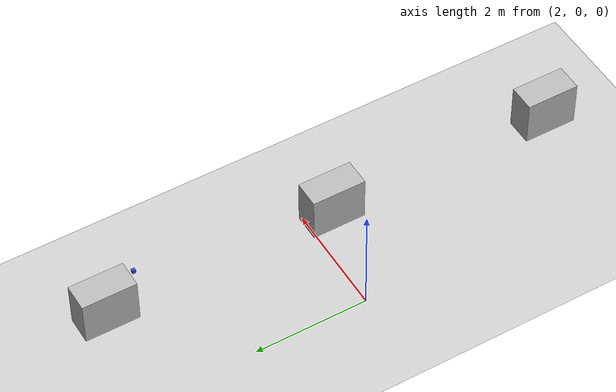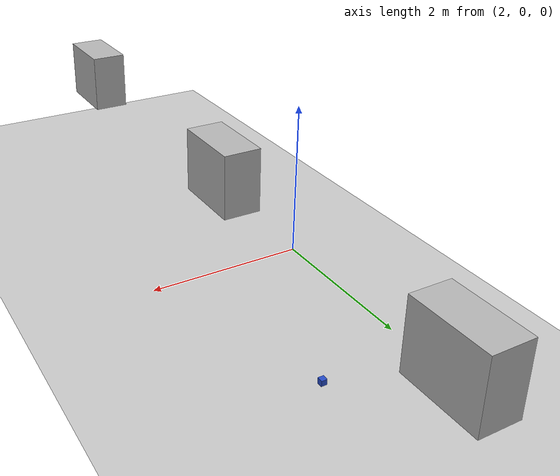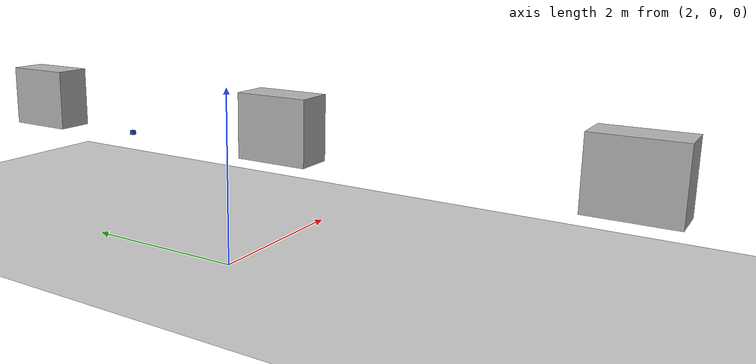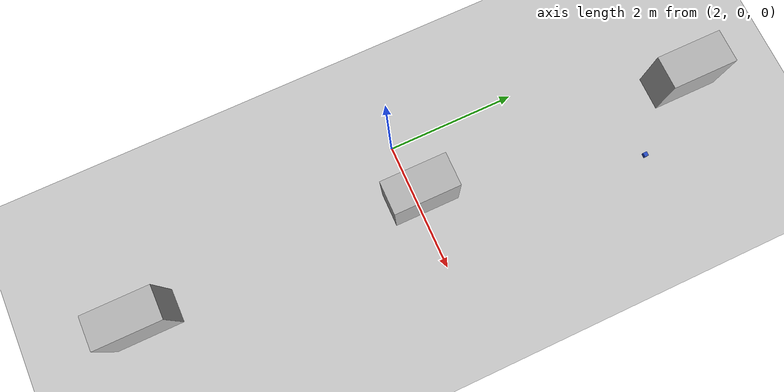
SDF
<sdf version="1.4">
 <world name="default">
  <include><uri>model://ground_plane</uri></include>
  <include><uri>model://sun</uri></include>
  <include><uri>model://fetchit_table</uri><name>pretzels</name><pose>3.05 -4 1 0 0 1.57</pose></include>
  <include><uri>model://fetchit_table</uri><name>gold_fish</name><pose>3.05 0 1 0 0 1.57</pose></include>
  <include><uri>model://fetchit_table</uri><name>cheese_its</name><pose>3.05 4 1 0 0 1.57</pose></include>
  <include><uri>model://demo_cube</uri><pose>3.8 3.15 0.83 0 0 0</pose></include>
 </world>
</sdf>

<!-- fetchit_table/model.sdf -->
<sdf version='1.4'>
  <model name="fetchit_table">
      <static>1</static>
      <link name='link'>
        <inertial>
          <mass>0.0592855</mass>
          <inertia>
            <ixx>2.31818050784e-05</ixx>
            <ixy>0.000000</ixy>
            <ixz>0.000000</ixz>
            <iyy>2.31851837098e-05</iyy>
            <iyz>0.000000</iyz>
            <izz>8.88944636856e-06</izz>
          </inertia>
        </inertial>
        <collision name='collision'>
          <geometry>
            <mesh>
              <uri>model://fetchit_table/meshes/simple.dae</uri>
              <scale>1 1 1</scale>
            </mesh>
          </geometry>
          <surface>
            <friction>
              <ode>
                <mu>30.0</mu>
                <mu2>30.0</mu2>
              </ode>
            </friction>
          </surface>
        </collision>
        <visual name='visual'>
          <geometry>
            <mesh>
              <uri>model://fetchit_table/meshes/tablefetchit_v2_materials.dae</uri>
              <scale>1 1 1</scale>
            </mesh>
          </geometry>
        </visual>
        <velocity_decay>
          <linear>0.000000</linear>
          <angular>0.000000</angular>
        </velocity_decay>
        <self_collide>0</self_collide>
        <kinematic>0</kinematic>
        <gravity>1</gravity>
      </link>
  </model>
</sdf>

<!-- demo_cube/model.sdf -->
<sdf version='1.6'>
  <model name="demo_cube">
      <static>0</static>
      <link name='link'>
        <inertial>
          <mass>0.25</mass>
          <inertia>
            <ixx>0.001</ixx>
            <ixy>0.000000</ixy>
            <ixz>0.000000</ixz>
            <iyy>0.001</iyy>
            <iyz>0.000000</iyz>
            <izz>0.001</izz>
          </inertia>
        </inertial>
        <collision name='collision'>
          <geometry>
            <box>
              <size>0.060 0.060 0.060</size>
            </box>
          </geometry>
          <surface>
            <friction>
              <ode>
                <mu>30.0</mu>
                <mu2>30.0</mu2>
              </ode>
            </friction>
            <contact>
              <ode>
                <kp>1000000.0</kp>
                <kd>100.0</kd>
                <max_vel>1.0</max_vel>
                <min_depth>0.002</min_depth>
              </ode>
            </contact>
          </surface>
        </collision>
        <visual name='visual'>
          <geometry>
            <box>
              <size>0.060 0.060 0.060</size>
            </box>
          </geometry>
          <material>
            <script>
              <uri>file://media/materials/scripts/gazebo.material</uri>
              <name>Gazebo/Blue</name>
            </script>
          </material>
        </visual>
        <velocity_decay>
          <linear>0.000000</linear>
          <angular>0.000000</angular>
        </velocity_decay>
        <self_collide>0</self_collide>
        <kinematic>0</kinematic>
        <gravity>1</gravity>
      </link>
  </model>
</sdf>
